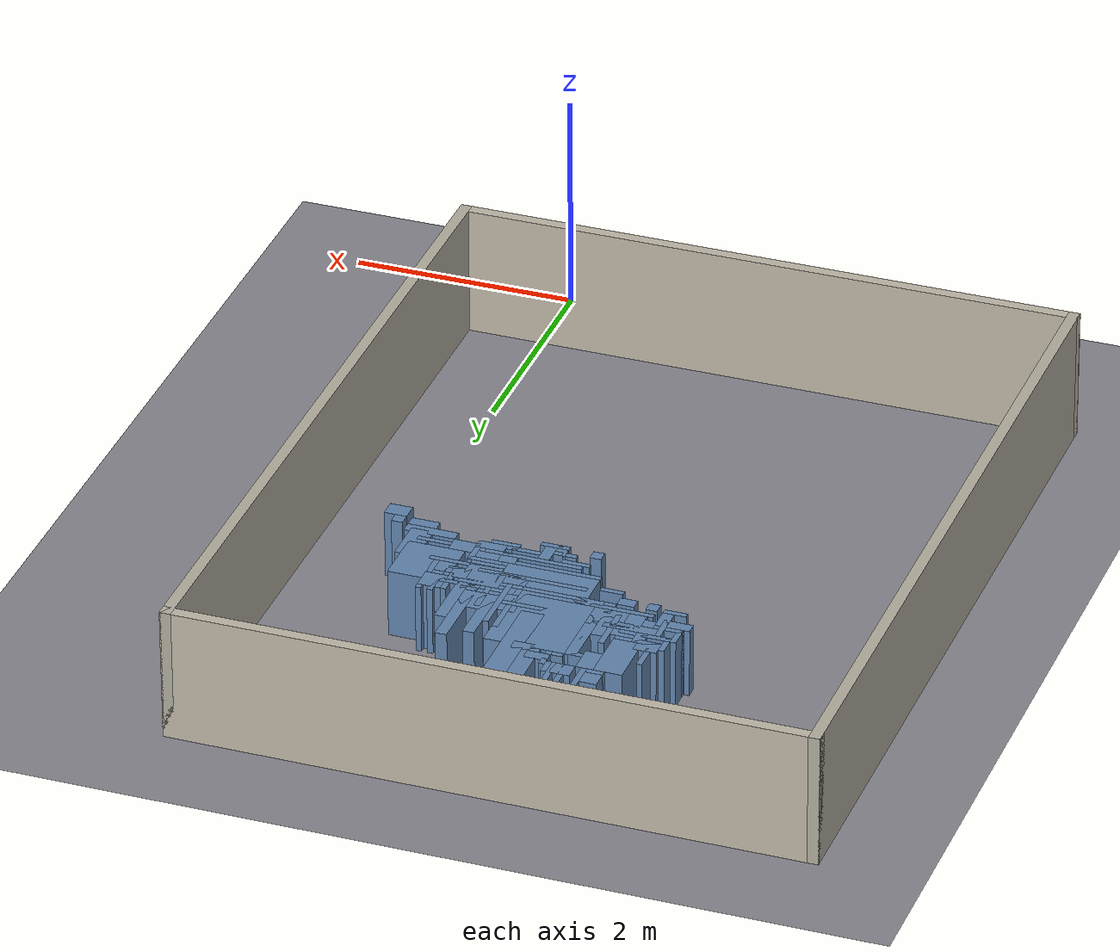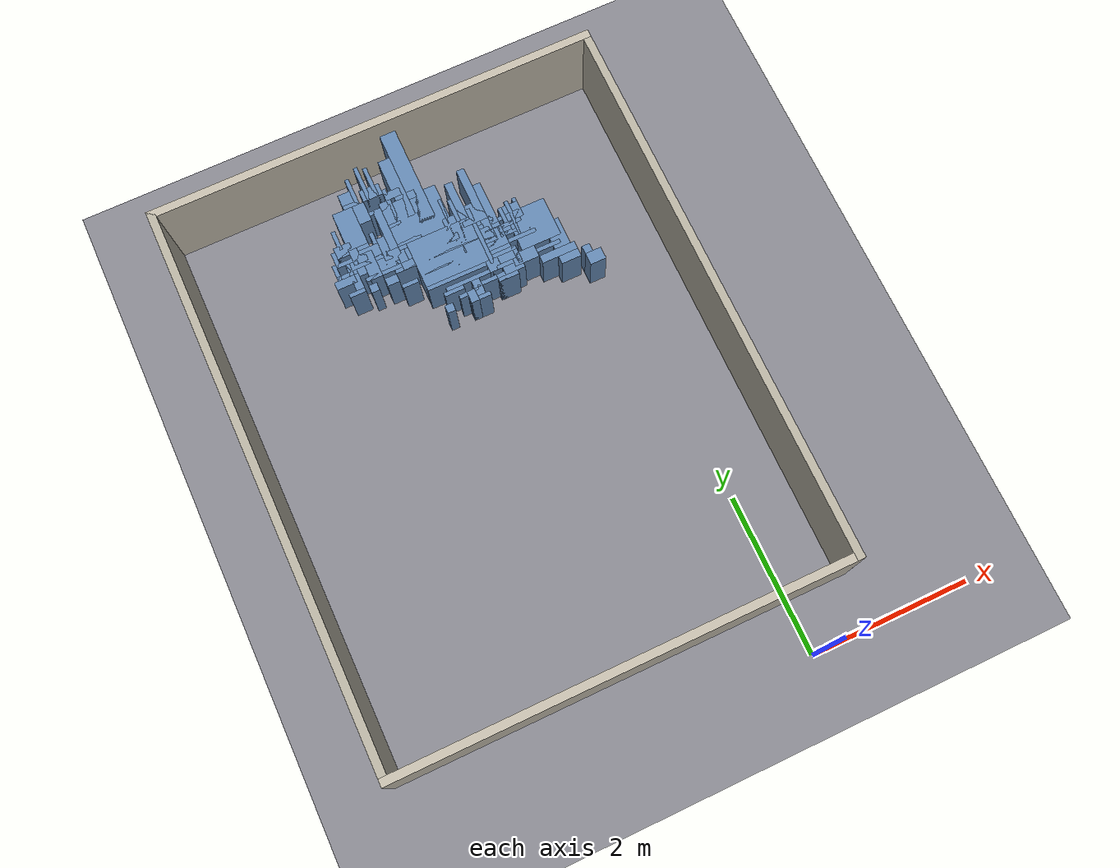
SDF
<?xml version="1.0" ?>
<sdf version="1.8">
  <world name="capture60">
    <physics name="1ms" type="ignored"><max_step_size>0.001</max_step_size><real_time_factor>1.0</real_time_factor></physics>
    <plugin filename="gz-sim-physics-system" name="gz::sim::systems::Physics"/>
    <plugin filename="gz-sim-user-commands-system" name="gz::sim::systems::UserCommands"/>
    <plugin filename="gz-sim-scene-broadcaster-system" name="gz::sim::systems::SceneBroadcaster"/>
    <plugin filename="gz-sim-sensors-system" name="gz::sim::systems::Sensors"><render_engine>ogre2</render_engine></plugin>
    <gravity>0 0 -9.8</gravity>
    <light type="directional" name="sun">
      <cast_shadows>true</cast_shadows>
      <pose>0 0 10 0 0 0</pose>
      <diffuse>0.85 0.85 0.85 1</diffuse>
      <direction>-0.4 0.2 -0.9</direction>
    </light>
    <scene><ambient>0.45 0.45 0.45 1</ambient><background>0.35 0.42 0.52 1</background></scene>
    <model name="ground_plane">
      <static>true</static>
      <link name="link">
        <collision name="collision"><geometry><plane><normal>0 0 1</normal><size>60 60</size></plane></geometry></collision>
        <visual name="visual"><geometry><plane><normal>0 0 1</normal><size>60 60</size></plane></geometry>
          <material><ambient>0.42 0.42 0.44 1</ambient><diffuse>0.52 0.52 0.55 1</diffuse></material></visual>
      </link>
    </model>
  <model name="wall_north">
    <static>true</static>
    <pose>-2.048 7.662 0.600 0 0 0</pose>
    <link name="link">
      <collision name="collision">
        <geometry><box><size>5.650 0.100 1.200</size></box></geometry>
      </collision>
      <visual name="visual">
        <geometry><box><size>5.650 0.100 1.200</size></box></geometry>
        <material><ambient>0.62 0.60 0.55 1</ambient><diffuse>0.75 0.72 0.66 1</diffuse>
          <specular>0.15 0.15 0.15 1</specular></material>
      </visual>
    </link>
  </model>
  <model name="wall_south">
    <static>true</static>
    <pose>-2.048 0.712 0.600 0 0 0</pose>
    <link name="link">
      <collision name="collision">
        <geometry><box><size>5.650 0.100 1.200</size></box></geometry>
      </collision>
      <visual name="visual">
        <geometry><box><size>5.650 0.100 1.200</size></box></geometry>
        <material><ambient>0.62 0.60 0.55 1</ambient><diffuse>0.75 0.72 0.66 1</diffuse>
          <specular>0.15 0.15 0.15 1</specular></material>
      </visual>
    </link>
  </model>
  <model name="wall_west">
    <static>true</static>
    <pose>-4.823 4.187 0.600 0 0 0</pose>
    <link name="link">
      <collision name="collision">
        <geometry><box><size>0.100 7.050 1.200</size></box></geometry>
      </collision>
      <visual name="visual">
        <geometry><box><size>0.100 7.050 1.200</size></box></geometry>
        <material><ambient>0.58 0.56 0.52 1</ambient><diffuse>0.70 0.68 0.62 1</diffuse>
          <specular>0.15 0.15 0.15 1</specular></material>
      </visual>
    </link>
  </model>
  <model name="wall_east">
    <static>true</static>
    <pose>0.727 4.187 0.600 0 0 0</pose>
    <link name="link">
      <collision name="collision">
        <geometry><box><size>0.100 7.050 1.200</size></box></geometry>
      </collision>
      <visual name="visual">
        <geometry><box><size>0.100 7.050 1.200</size></box></geometry>
        <material><ambient>0.58 0.56 0.52 1</ambient><diffuse>0.70 0.68 0.62 1</diffuse>
          <specular>0.15 0.15 0.15 1</specular></material>
      </visual>
    </link>
  </model>
  <model name="obstacle_01">
    <static>true</static>
    <pose>-0.323 5.137 0.590 0 0 0</pose>
    <link name="link">
      <collision name="collision">
        <geometry><box><size>0.200 0.150 0.620</size></box></geometry>
      </collision>
      <visual name="visual">
        <geometry><box><size>0.200 0.150 0.620</size></box></geometry>
        <material><ambient>0.30 0.42 0.55 1</ambient><diffuse>0.38 0.52 0.68 1</diffuse>
          <specular>0.15 0.15 0.15 1</specular></material>
      </visual>
    </link>
  </model>
  <model name="obstacle_02">
    <static>true</static>
    <pose>-0.623 5.562 0.590 0 0 0</pose>
    <link name="link">
      <collision name="collision">
        <geometry><box><size>0.200 0.400 0.620</size></box></geometry>
      </collision>
      <visual name="visual">
        <geometry><box><size>0.200 0.400 0.620</size></box></geometry>
        <material><ambient>0.30 0.42 0.55 1</ambient><diffuse>0.38 0.52 0.68 1</diffuse>
          <specular>0.15 0.15 0.15 1</specular></material>
      </visual>
    </link>
  </model>
  <model name="obstacle_03">
    <static>true</static>
    <pose>-1.823 5.287 0.590 0 0 0</pose>
    <link name="link">
      <collision name="collision">
        <geometry><box><size>0.100 0.150 0.620</size></box></geometry>
      </collision>
      <visual name="visual">
        <geometry><box><size>0.100 0.150 0.620</size></box></geometry>
        <material><ambient>0.30 0.42 0.55 1</ambient><diffuse>0.38 0.52 0.68 1</diffuse>
          <specular>0.15 0.15 0.15 1</specular></material>
      </visual>
    </link>
  </model>
  <model name="obstacle_04">
    <static>true</static>
    <pose>-0.373 5.262 0.590 0 0 0</pose>
    <link name="link">
      <collision name="collision">
        <geometry><box><size>0.100 0.100 0.620</size></box></geometry>
      </collision>
      <visual name="visual">
        <geometry><box><size>0.100 0.100 0.620</size></box></geometry>
        <material><ambient>0.30 0.42 0.55 1</ambient><diffuse>0.38 0.52 0.68 1</diffuse>
          <specular>0.15 0.15 0.15 1</specular></material>
      </visual>
    </link>
  </model>
  <model name="obstacle_05">
    <static>true</static>
    <pose>-2.123 5.262 0.590 0 0 0</pose>
    <link name="link">
      <collision name="collision">
        <geometry><box><size>0.100 0.100 0.620</size></box></geometry>
      </collision>
      <visual name="visual">
        <geometry><box><size>0.100 0.100 0.620</size></box></geometry>
        <material><ambient>0.30 0.42 0.55 1</ambient><diffuse>0.38 0.52 0.68 1</diffuse>
          <specular>0.15 0.15 0.15 1</specular></material>
      </visual>
    </link>
  </model>
  <model name="obstacle_06">
    <static>true</static>
    <pose>-0.598 5.262 0.590 0 0 0</pose>
    <link name="link">
      <collision name="collision">
        <geometry><box><size>0.250 0.100 0.620</size></box></geometry>
      </collision>
      <visual name="visual">
        <geometry><box><size>0.250 0.100 0.620</size></box></geometry>
        <material><ambient>0.30 0.42 0.55 1</ambient><diffuse>0.38 0.52 0.68 1</diffuse>
          <specular>0.15 0.15 0.15 1</specular></material>
      </visual>
    </link>
  </model>
  <model name="obstacle_07">
    <static>true</static>
    <pose>-1.323 6.312 0.590 0 0 0</pose>
    <link name="link">
      <collision name="collision">
        <geometry><box><size>0.100 1.000 0.620</size></box></geometry>
      </collision>
      <visual name="visual">
        <geometry><box><size>0.100 1.000 0.620</size></box></geometry>
        <material><ambient>0.30 0.42 0.55 1</ambient><diffuse>0.38 0.52 0.68 1</diffuse>
          <specular>0.15 0.15 0.15 1</specular></material>
      </visual>
    </link>
  </model>
  <model name="obstacle_08">
    <static>true</static>
    <pose>-1.448 5.937 0.590 0 0 0</pose>
    <link name="link">
      <collision name="collision">
        <geometry><box><size>0.050 0.750 0.620</size></box></geometry>
      </collision>
      <visual name="visual">
        <geometry><box><size>0.050 0.750 0.620</size></box></geometry>
        <material><ambient>0.30 0.42 0.55 1</ambient><diffuse>0.38 0.52 0.68 1</diffuse>
          <specular>0.15 0.15 0.15 1</specular></material>
      </visual>
    </link>
  </model>
  <model name="obstacle_09">
    <static>true</static>
    <pose>-1.748 5.237 0.590 0 0 0</pose>
    <link name="link">
      <collision name="collision">
        <geometry><box><size>0.250 0.050 0.620</size></box></geometry>
      </collision>
      <visual name="visual">
        <geometry><box><size>0.250 0.050 0.620</size></box></geometry>
        <material><ambient>0.30 0.42 0.55 1</ambient><diffuse>0.38 0.52 0.68 1</diffuse>
          <specular>0.15 0.15 0.15 1</specular></material>
      </visual>
    </link>
  </model>
  <model name="obstacle_10">
    <static>true</static>
    <pose>-1.723 5.362 0.590 0 0 0</pose>
    <link name="link">
      <collision name="collision">
        <geometry><box><size>0.100 0.200 0.620</size></box></geometry>
      </collision>
      <visual name="visual">
        <geometry><box><size>0.100 0.200 0.620</size></box></geometry>
        <material><ambient>0.30 0.42 0.55 1</ambient><diffuse>0.38 0.52 0.68 1</diffuse>
          <specular>0.15 0.15 0.15 1</specular></material>
      </visual>
    </link>
  </model>
  <model name="obstacle_11">
    <static>true</static>
    <pose>-0.698 5.362 0.590 0 0 0</pose>
    <link name="link">
      <collision name="collision">
        <geometry><box><size>0.450 0.100 0.620</size></box></geometry>
      </collision>
      <visual name="visual">
        <geometry><box><size>0.450 0.100 0.620</size></box></geometry>
        <material><ambient>0.30 0.42 0.55 1</ambient><diffuse>0.38 0.52 0.68 1</diffuse>
          <specular>0.15 0.15 0.15 1</specular></material>
      </visual>
    </link>
  </model>
  <model name="obstacle_12">
    <static>true</static>
    <pose>-1.423 5.362 0.590 0 0 0</pose>
    <link name="link">
      <collision name="collision">
        <geometry><box><size>0.100 0.100 0.620</size></box></geometry>
      </collision>
      <visual name="visual">
        <geometry><box><size>0.100 0.100 0.620</size></box></geometry>
        <material><ambient>0.30 0.42 0.55 1</ambient><diffuse>0.38 0.52 0.68 1</diffuse>
          <specular>0.15 0.15 0.15 1</specular></material>
      </visual>
    </link>
  </model>
  <model name="obstacle_13">
    <static>true</static>
    <pose>-1.148 5.562 0.590 0 0 0</pose>
    <link name="link">
      <collision name="collision">
        <geometry><box><size>0.050 0.200 0.620</size></box></geometry>
      </collision>
      <visual name="visual">
        <geometry><box><size>0.050 0.200 0.620</size></box></geometry>
        <material><ambient>0.30 0.42 0.55 1</ambient><diffuse>0.38 0.52 0.68 1</diffuse>
          <specular>0.15 0.15 0.15 1</specular></material>
      </visual>
    </link>
  </model>
  <model name="obstacle_14">
    <static>true</static>
    <pose>-1.348 5.337 0.590 0 0 0</pose>
    <link name="link">
      <collision name="collision">
        <geometry><box><size>0.250 0.050 0.620</size></box></geometry>
      </collision>
      <visual name="visual">
        <geometry><box><size>0.250 0.050 0.620</size></box></geometry>
        <material><ambient>0.30 0.42 0.55 1</ambient><diffuse>0.38 0.52 0.68 1</diffuse>
          <specular>0.15 0.15 0.15 1</specular></material>
      </visual>
    </link>
  </model>
  <model name="obstacle_15">
    <static>true</static>
    <pose>-1.248 5.412 0.590 0 0 0</pose>
    <link name="link">
      <collision name="collision">
        <geometry><box><size>0.250 0.100 0.620</size></box></geometry>
      </collision>
      <visual name="visual">
        <geometry><box><size>0.250 0.100 0.620</size></box></geometry>
        <material><ambient>0.30 0.42 0.55 1</ambient><diffuse>0.38 0.52 0.68 1</diffuse>
          <specular>0.15 0.15 0.15 1</specular></material>
      </visual>
    </link>
  </model>
  <model name="obstacle_16">
    <static>true</static>
    <pose>-1.848 5.337 0.590 0 0 0</pose>
    <link name="link">
      <collision name="collision">
        <geometry><box><size>0.250 0.050 0.620</size></box></geometry>
      </collision>
      <visual name="visual">
        <geometry><box><size>0.250 0.050 0.620</size></box></geometry>
        <material><ambient>0.30 0.42 0.55 1</ambient><diffuse>0.38 0.52 0.68 1</diffuse>
          <specular>0.15 0.15 0.15 1</specular></material>
      </visual>
    </link>
  </model>
  <model name="obstacle_17">
    <static>true</static>
    <pose>-1.923 6.962 0.590 0 0 0</pose>
    <link name="link">
      <collision name="collision">
        <geometry><box><size>0.200 1.400 0.620</size></box></geometry>
      </collision>
      <visual name="visual">
        <geometry><box><size>0.200 1.400 0.620</size></box></geometry>
        <material><ambient>0.30 0.42 0.55 1</ambient><diffuse>0.38 0.52 0.68 1</diffuse>
          <specular>0.15 0.15 0.15 1</specular></material>
      </visual>
    </link>
  </model>
  <model name="obstacle_18">
    <static>true</static>
    <pose>-0.998 5.987 0.590 0 0 0</pose>
    <link name="link">
      <collision name="collision">
        <geometry><box><size>0.050 0.450 0.620</size></box></geometry>
      </collision>
      <visual name="visual">
        <geometry><box><size>0.050 0.450 0.620</size></box></geometry>
        <material><ambient>0.30 0.42 0.55 1</ambient><diffuse>0.38 0.52 0.68 1</diffuse>
          <specular>0.15 0.15 0.15 1</specular></material>
      </visual>
    </link>
  </model>
  <model name="obstacle_19">
    <static>true</static>
    <pose>-1.073 5.487 0.590 0 0 0</pose>
    <link name="link">
      <collision name="collision">
        <geometry><box><size>0.300 0.150 0.620</size></box></geometry>
      </collision>
      <visual name="visual">
        <geometry><box><size>0.300 0.150 0.620</size></box></geometry>
        <material><ambient>0.30 0.42 0.55 1</ambient><diffuse>0.38 0.52 0.68 1</diffuse>
          <specular>0.15 0.15 0.15 1</specular></material>
      </visual>
    </link>
  </model>
  <model name="obstacle_20">
    <static>true</static>
    <pose>-1.573 5.387 0.590 0 0 0</pose>
    <link name="link">
      <collision name="collision">
        <geometry><box><size>0.300 0.050 0.620</size></box></geometry>
      </collision>
      <visual name="visual">
        <geometry><box><size>0.300 0.050 0.620</size></box></geometry>
        <material><ambient>0.30 0.42 0.55 1</ambient><diffuse>0.38 0.52 0.68 1</diffuse>
          <specular>0.15 0.15 0.15 1</specular></material>
      </visual>
    </link>
  </model>
  <model name="obstacle_21">
    <static>true</static>
    <pose>-1.448 5.537 0.590 0 0 0</pose>
    <link name="link">
      <collision name="collision">
        <geometry><box><size>0.150 0.150 0.620</size></box></geometry>
      </collision>
      <visual name="visual">
        <geometry><box><size>0.150 0.150 0.620</size></box></geometry>
        <material><ambient>0.30 0.42 0.55 1</ambient><diffuse>0.38 0.52 0.68 1</diffuse>
          <specular>0.15 0.15 0.15 1</specular></material>
      </visual>
    </link>
  </model>
  <model name="obstacle_22">
    <static>true</static>
    <pose>-1.598 6.212 0.590 0 0 0</pose>
    <link name="link">
      <collision name="collision">
        <geometry><box><size>0.050 0.600 0.620</size></box></geometry>
      </collision>
      <visual name="visual">
        <geometry><box><size>0.050 0.600 0.620</size></box></geometry>
        <material><ambient>0.30 0.42 0.55 1</ambient><diffuse>0.38 0.52 0.68 1</diffuse>
          <specular>0.15 0.15 0.15 1</specular></material>
      </visual>
    </link>
  </model>
  <model name="obstacle_23">
    <static>true</static>
    <pose>-1.698 6.187 0.590 0 0 0</pose>
    <link name="link">
      <collision name="collision">
        <geometry><box><size>0.050 0.750 0.620</size></box></geometry>
      </collision>
      <visual name="visual">
        <geometry><box><size>0.050 0.750 0.620</size></box></geometry>
        <material><ambient>0.30 0.42 0.55 1</ambient><diffuse>0.38 0.52 0.68 1</diffuse>
          <specular>0.15 0.15 0.15 1</specular></material>
      </visual>
    </link>
  </model>
  <model name="obstacle_24">
    <static>true</static>
    <pose>-1.998 5.437 0.590 0 0 0</pose>
    <link name="link">
      <collision name="collision">
        <geometry><box><size>0.250 0.050 0.620</size></box></geometry>
      </collision>
      <visual name="visual">
        <geometry><box><size>0.250 0.050 0.620</size></box></geometry>
        <material><ambient>0.30 0.42 0.55 1</ambient><diffuse>0.38 0.52 0.68 1</diffuse>
          <specular>0.15 0.15 0.15 1</specular></material>
      </visual>
    </link>
  </model>
  <model name="obstacle_25">
    <static>true</static>
    <pose>-0.773 5.487 0.590 0 0 0</pose>
    <link name="link">
      <collision name="collision">
        <geometry><box><size>0.300 0.050 0.620</size></box></geometry>
      </collision>
      <visual name="visual">
        <geometry><box><size>0.300 0.050 0.620</size></box></geometry>
        <material><ambient>0.30 0.42 0.55 1</ambient><diffuse>0.38 0.52 0.68 1</diffuse>
          <specular>0.15 0.15 0.15 1</specular></material>
      </visual>
    </link>
  </model>
  <model name="obstacle_26">
    <static>true</static>
    <pose>-0.823 5.812 0.590 0 0 0</pose>
    <link name="link">
      <collision name="collision">
        <geometry><box><size>0.500 0.500 0.620</size></box></geometry>
      </collision>
      <visual name="visual">
        <geometry><box><size>0.500 0.500 0.620</size></box></geometry>
        <material><ambient>0.30 0.42 0.55 1</ambient><diffuse>0.38 0.52 0.68 1</diffuse>
          <specular>0.15 0.15 0.15 1</specular></material>
      </visual>
    </link>
  </model>
  <model name="obstacle_27">
    <static>true</static>
    <pose>-0.898 5.987 0.590 0 0 0</pose>
    <link name="link">
      <collision name="collision">
        <geometry><box><size>0.050 0.450 0.620</size></box></geometry>
      </collision>
      <visual name="visual">
        <geometry><box><size>0.050 0.450 0.620</size></box></geometry>
        <material><ambient>0.30 0.42 0.55 1</ambient><diffuse>0.38 0.52 0.68 1</diffuse>
          <specular>0.15 0.15 0.15 1</specular></material>
      </visual>
    </link>
  </model>
  <model name="obstacle_28">
    <static>true</static>
    <pose>-1.648 5.487 0.590 0 0 0</pose>
    <link name="link">
      <collision name="collision">
        <geometry><box><size>0.850 0.050 0.620</size></box></geometry>
      </collision>
      <visual name="visual">
        <geometry><box><size>0.850 0.050 0.620</size></box></geometry>
        <material><ambient>0.30 0.42 0.55 1</ambient><diffuse>0.38 0.52 0.68 1</diffuse>
          <specular>0.15 0.15 0.15 1</specular></material>
      </visual>
    </link>
  </model>
  <model name="obstacle_29">
    <static>true</static>
    <pose>-1.273 5.562 0.590 0 0 0</pose>
    <link name="link">
      <collision name="collision">
        <geometry><box><size>0.200 0.100 0.620</size></box></geometry>
      </collision>
      <visual name="visual">
        <geometry><box><size>0.200 0.100 0.620</size></box></geometry>
        <material><ambient>0.30 0.42 0.55 1</ambient><diffuse>0.38 0.52 0.68 1</diffuse>
          <specular>0.15 0.15 0.15 1</specular></material>
      </visual>
    </link>
  </model>
  <model name="obstacle_30">
    <static>true</static>
    <pose>-1.773 5.587 0.590 0 0 0</pose>
    <link name="link">
      <collision name="collision">
        <geometry><box><size>1.000 0.050 0.620</size></box></geometry>
      </collision>
      <visual name="visual">
        <geometry><box><size>1.000 0.050 0.620</size></box></geometry>
        <material><ambient>0.30 0.42 0.55 1</ambient><diffuse>0.38 0.52 0.68 1</diffuse>
          <specular>0.15 0.15 0.15 1</specular></material>
      </visual>
    </link>
  </model>
  <model name="obstacle_31">
    <static>true</static>
    <pose>-1.348 5.862 0.590 0 0 0</pose>
    <link name="link">
      <collision name="collision">
        <geometry><box><size>0.350 0.300 0.620</size></box></geometry>
      </collision>
      <visual name="visual">
        <geometry><box><size>0.350 0.300 0.620</size></box></geometry>
        <material><ambient>0.30 0.42 0.55 1</ambient><diffuse>0.38 0.52 0.68 1</diffuse>
          <specular>0.15 0.15 0.15 1</specular></material>
      </visual>
    </link>
  </model>
  <model name="obstacle_32">
    <static>true</static>
    <pose>-1.873 5.912 0.590 0 0 0</pose>
    <link name="link">
      <collision name="collision">
        <geometry><box><size>0.800 0.600 0.620</size></box></geometry>
      </collision>
      <visual name="visual">
        <geometry><box><size>0.800 0.600 0.620</size></box></geometry>
        <material><ambient>0.30 0.42 0.55 1</ambient><diffuse>0.38 0.52 0.68 1</diffuse>
          <specular>0.15 0.15 0.15 1</specular></material>
      </visual>
    </link>
  </model>
  <model name="obstacle_33">
    <static>true</static>
    <pose>-1.273 5.637 0.590 0 0 0</pose>
    <link name="link">
      <collision name="collision">
        <geometry><box><size>0.300 0.050 0.620</size></box></geometry>
      </collision>
      <visual name="visual">
        <geometry><box><size>0.300 0.050 0.620</size></box></geometry>
        <material><ambient>0.30 0.42 0.55 1</ambient><diffuse>0.38 0.52 0.68 1</diffuse>
          <specular>0.15 0.15 0.15 1</specular></material>
      </visual>
    </link>
  </model>
  <model name="obstacle_34">
    <static>true</static>
    <pose>-1.498 5.687 0.590 0 0 0</pose>
    <link name="link">
      <collision name="collision">
        <geometry><box><size>0.650 0.050 0.620</size></box></geometry>
      </collision>
      <visual name="visual">
        <geometry><box><size>0.650 0.050 0.620</size></box></geometry>
        <material><ambient>0.30 0.42 0.55 1</ambient><diffuse>0.38 0.52 0.68 1</diffuse>
          <specular>0.15 0.15 0.15 1</specular></material>
      </visual>
    </link>
  </model>
  <model name="obstacle_35">
    <static>true</static>
    <pose>-1.173 5.737 0.590 0 0 0</pose>
    <link name="link">
      <collision name="collision">
        <geometry><box><size>0.700 0.050 0.620</size></box></geometry>
      </collision>
      <visual name="visual">
        <geometry><box><size>0.700 0.050 0.620</size></box></geometry>
        <material><ambient>0.30 0.42 0.55 1</ambient><diffuse>0.38 0.52 0.68 1</diffuse>
          <specular>0.15 0.15 0.15 1</specular></material>
      </visual>
    </link>
  </model>
  <model name="obstacle_36">
    <static>true</static>
    <pose>-1.148 5.887 0.590 0 0 0</pose>
    <link name="link">
      <collision name="collision">
        <geometry><box><size>0.150 0.150 0.620</size></box></geometry>
      </collision>
      <visual name="visual">
        <geometry><box><size>0.150 0.150 0.620</size></box></geometry>
        <material><ambient>0.30 0.42 0.55 1</ambient><diffuse>0.38 0.52 0.68 1</diffuse>
          <specular>0.15 0.15 0.15 1</specular></material>
      </visual>
    </link>
  </model>
  <model name="obstacle_37">
    <static>true</static>
    <pose>-1.098 6.037 0.590 0 0 0</pose>
    <link name="link">
      <collision name="collision">
        <geometry><box><size>0.050 0.250 0.620</size></box></geometry>
      </collision>
      <visual name="visual">
        <geometry><box><size>0.050 0.250 0.620</size></box></geometry>
        <material><ambient>0.30 0.42 0.55 1</ambient><diffuse>0.38 0.52 0.68 1</diffuse>
          <specular>0.15 0.15 0.15 1</specular></material>
      </visual>
    </link>
  </model>
  <model name="obstacle_38">
    <static>true</static>
    <pose>-2.023 6.387 0.590 0 0 0</pose>
    <link name="link">
      <collision name="collision">
        <geometry><box><size>0.700 0.750 0.620</size></box></geometry>
      </collision>
      <visual name="visual">
        <geometry><box><size>0.700 0.750 0.620</size></box></geometry>
        <material><ambient>0.30 0.42 0.55 1</ambient><diffuse>0.38 0.52 0.68 1</diffuse>
          <specular>0.15 0.15 0.15 1</specular></material>
      </visual>
    </link>
  </model>
  <model name="obstacle_39">
    <static>true</static>
    <pose>-2.423 5.737 0.590 0 0 0</pose>
    <link name="link">
      <collision name="collision">
        <geometry><box><size>0.200 0.050 0.620</size></box></geometry>
      </collision>
      <visual name="visual">
        <geometry><box><size>0.200 0.050 0.620</size></box></geometry>
        <material><ambient>0.30 0.42 0.55 1</ambient><diffuse>0.38 0.52 0.68 1</diffuse>
          <specular>0.15 0.15 0.15 1</specular></material>
      </visual>
    </link>
  </model>
  <model name="obstacle_40">
    <static>true</static>
    <pose>-1.748 5.787 0.590 0 0 0</pose>
    <link name="link">
      <collision name="collision">
        <geometry><box><size>0.950 0.050 0.620</size></box></geometry>
      </collision>
      <visual name="visual">
        <geometry><box><size>0.950 0.050 0.620</size></box></geometry>
        <material><ambient>0.30 0.42 0.55 1</ambient><diffuse>0.38 0.52 0.68 1</diffuse>
          <specular>0.15 0.15 0.15 1</specular></material>
      </visual>
    </link>
  </model>
  <model name="obstacle_41">
    <static>true</static>
    <pose>-2.098 6.912 0.590 0 0 0</pose>
    <link name="link">
      <collision name="collision">
        <geometry><box><size>0.150 0.800 0.620</size></box></geometry>
      </collision>
      <visual name="visual">
        <geometry><box><size>0.150 0.800 0.620</size></box></geometry>
        <material><ambient>0.30 0.42 0.55 1</ambient><diffuse>0.38 0.52 0.68 1</diffuse>
          <specular>0.15 0.15 0.15 1</specular></material>
      </visual>
    </link>
  </model>
  <model name="obstacle_42">
    <static>true</static>
    <pose>-2.598 5.862 0.590 0 0 0</pose>
    <link name="link">
      <collision name="collision">
        <geometry><box><size>0.150 0.100 0.620</size></box></geometry>
      </collision>
      <visual name="visual">
        <geometry><box><size>0.150 0.100 0.620</size></box></geometry>
        <material><ambient>0.30 0.42 0.55 1</ambient><diffuse>0.38 0.52 0.68 1</diffuse>
          <specular>0.15 0.15 0.15 1</specular></material>
      </visual>
    </link>
  </model>
  <model name="obstacle_43">
    <static>true</static>
    <pose>-2.823 5.862 0.590 0 0 0</pose>
    <link name="link">
      <collision name="collision">
        <geometry><box><size>0.100 0.100 0.620</size></box></geometry>
      </collision>
      <visual name="visual">
        <geometry><box><size>0.100 0.100 0.620</size></box></geometry>
        <material><ambient>0.30 0.42 0.55 1</ambient><diffuse>0.38 0.52 0.68 1</diffuse>
          <specular>0.15 0.15 0.15 1</specular></material>
      </visual>
    </link>
  </model>
  <model name="obstacle_44">
    <static>true</static>
    <pose>-1.198 5.837 0.590 0 0 0</pose>
    <link name="link">
      <collision name="collision">
        <geometry><box><size>0.350 0.050 0.620</size></box></geometry>
      </collision>
      <visual name="visual">
        <geometry><box><size>0.350 0.050 0.620</size></box></geometry>
        <material><ambient>0.30 0.42 0.55 1</ambient><diffuse>0.38 0.52 0.68 1</diffuse>
          <specular>0.15 0.15 0.15 1</specular></material>
      </visual>
    </link>
  </model>
  <model name="obstacle_45">
    <static>true</static>
    <pose>-1.223 6.287 0.590 0 0 0</pose>
    <link name="link">
      <collision name="collision">
        <geometry><box><size>0.100 0.550 0.620</size></box></geometry>
      </collision>
      <visual name="visual">
        <geometry><box><size>0.100 0.550 0.620</size></box></geometry>
        <material><ambient>0.30 0.42 0.55 1</ambient><diffuse>0.38 0.52 0.68 1</diffuse>
          <specular>0.15 0.15 0.15 1</specular></material>
      </visual>
    </link>
  </model>
  <model name="obstacle_46">
    <static>true</static>
    <pose>-2.248 6.662 0.590 0 0 0</pose>
    <link name="link">
      <collision name="collision">
        <geometry><box><size>0.050 0.600 0.620</size></box></geometry>
      </collision>
      <visual name="visual">
        <geometry><box><size>0.050 0.600 0.620</size></box></geometry>
        <material><ambient>0.30 0.42 0.55 1</ambient><diffuse>0.38 0.52 0.68 1</diffuse>
          <specular>0.15 0.15 0.15 1</specular></material>
      </visual>
    </link>
  </model>
  <model name="obstacle_47">
    <static>true</static>
    <pose>-2.373 6.137 0.590 0 0 0</pose>
    <link name="link">
      <collision name="collision">
        <geometry><box><size>0.100 0.250 0.620</size></box></geometry>
      </collision>
      <visual name="visual">
        <geometry><box><size>0.100 0.250 0.620</size></box></geometry>
        <material><ambient>0.30 0.42 0.55 1</ambient><diffuse>0.38 0.52 0.68 1</diffuse>
          <specular>0.15 0.15 0.15 1</specular></material>
      </visual>
    </link>
  </model>
  <model name="obstacle_48">
    <static>true</static>
    <pose>-2.598 6.287 0.590 0 0 0</pose>
    <link name="link">
      <collision name="collision">
        <geometry><box><size>0.050 0.450 0.620</size></box></geometry>
      </collision>
      <visual name="visual">
        <geometry><box><size>0.050 0.450 0.620</size></box></geometry>
        <material><ambient>0.30 0.42 0.55 1</ambient><diffuse>0.38 0.52 0.68 1</diffuse>
          <specular>0.15 0.15 0.15 1</specular></material>
      </visual>
    </link>
  </model>
  <model name="obstacle_49">
    <static>true</static>
    <pose>-2.973 6.012 0.590 0 0 0</pose>
    <link name="link">
      <collision name="collision">
        <geometry><box><size>0.100 0.200 0.620</size></box></geometry>
      </collision>
      <visual name="visual">
        <geometry><box><size>0.100 0.200 0.620</size></box></geometry>
        <material><ambient>0.30 0.42 0.55 1</ambient><diffuse>0.38 0.52 0.68 1</diffuse>
          <specular>0.15 0.15 0.15 1</specular></material>
      </visual>
    </link>
  </model>
  <model name="obstacle_50">
    <static>true</static>
    <pose>-0.973 6.062 0.590 0 0 0</pose>
    <link name="link">
      <collision name="collision">
        <geometry><box><size>0.200 0.200 0.620</size></box></geometry>
      </collision>
      <visual name="visual">
        <geometry><box><size>0.200 0.200 0.620</size></box></geometry>
        <material><ambient>0.30 0.42 0.55 1</ambient><diffuse>0.38 0.52 0.68 1</diffuse>
          <specular>0.15 0.15 0.15 1</specular></material>
      </visual>
    </link>
  </model>
  <model name="obstacle_51">
    <static>true</static>
    <pose>-1.498 5.887 0.590 0 0 0</pose>
    <link name="link">
      <collision name="collision">
        <geometry><box><size>0.350 0.050 0.620</size></box></geometry>
      </collision>
      <visual name="visual">
        <geometry><box><size>0.350 0.050 0.620</size></box></geometry>
        <material><ambient>0.30 0.42 0.55 1</ambient><diffuse>0.38 0.52 0.68 1</diffuse>
          <specular>0.15 0.15 0.15 1</specular></material>
      </visual>
    </link>
  </model>
  <model name="obstacle_52">
    <static>true</static>
    <pose>-2.298 5.962 0.590 0 0 0</pose>
    <link name="link">
      <collision name="collision">
        <geometry><box><size>0.250 0.100 0.620</size></box></geometry>
      </collision>
      <visual name="visual">
        <geometry><box><size>0.250 0.100 0.620</size></box></geometry>
        <material><ambient>0.30 0.42 0.55 1</ambient><diffuse>0.38 0.52 0.68 1</diffuse>
          <specular>0.15 0.15 0.15 1</specular></material>
      </visual>
    </link>
  </model>
  <model name="obstacle_53">
    <static>true</static>
    <pose>-2.748 6.137 0.590 0 0 0</pose>
    <link name="link">
      <collision name="collision">
        <geometry><box><size>0.150 0.350 0.620</size></box></geometry>
      </collision>
      <visual name="visual">
        <geometry><box><size>0.150 0.350 0.620</size></box></geometry>
        <material><ambient>0.30 0.42 0.55 1</ambient><diffuse>0.38 0.52 0.68 1</diffuse>
          <specular>0.15 0.15 0.15 1</specular></material>
      </visual>
    </link>
  </model>
  <model name="obstacle_54">
    <static>true</static>
    <pose>-3.023 5.887 0.590 0 0 0</pose>
    <link name="link">
      <collision name="collision">
        <geometry><box><size>0.200 0.050 0.620</size></box></geometry>
      </collision>
      <visual name="visual">
        <geometry><box><size>0.200 0.050 0.620</size></box></geometry>
        <material><ambient>0.30 0.42 0.55 1</ambient><diffuse>0.38 0.52 0.68 1</diffuse>
          <specular>0.15 0.15 0.15 1</specular></material>
      </visual>
    </link>
  </model>
  <model name="obstacle_55">
    <static>true</static>
    <pose>-2.998 6.137 0.590 0 0 0</pose>
    <link name="link">
      <collision name="collision">
        <geometry><box><size>0.050 0.250 0.620</size></box></geometry>
      </collision>
      <visual name="visual">
        <geometry><box><size>0.050 0.250 0.620</size></box></geometry>
        <material><ambient>0.30 0.42 0.55 1</ambient><diffuse>0.38 0.52 0.68 1</diffuse>
          <specular>0.15 0.15 0.15 1</specular></material>
      </visual>
    </link>
  </model>
  <model name="obstacle_56">
    <static>true</static>
    <pose>-1.148 5.937 0.590 0 0 0</pose>
    <link name="link">
      <collision name="collision">
        <geometry><box><size>0.450 0.050 0.620</size></box></geometry>
      </collision>
      <visual name="visual">
        <geometry><box><size>0.450 0.050 0.620</size></box></geometry>
        <material><ambient>0.30 0.42 0.55 1</ambient><diffuse>0.38 0.52 0.68 1</diffuse>
          <specular>0.15 0.15 0.15 1</specular></material>
      </visual>
    </link>
  </model>
  <model name="obstacle_57">
    <static>true</static>
    <pose>-1.998 5.937 0.590 0 0 0</pose>
    <link name="link">
      <collision name="collision">
        <geometry><box><size>1.050 0.050 0.620</size></box></geometry>
      </collision>
      <visual name="visual">
        <geometry><box><size>1.050 0.050 0.620</size></box></geometry>
        <material><ambient>0.30 0.42 0.55 1</ambient><diffuse>0.38 0.52 0.68 1</diffuse>
          <specular>0.15 0.15 0.15 1</specular></material>
      </visual>
    </link>
  </model>
  <model name="obstacle_58">
    <static>true</static>
    <pose>-2.423 6.012 0.590 0 0 0</pose>
    <link name="link">
      <collision name="collision">
        <geometry><box><size>0.200 0.100 0.620</size></box></geometry>
      </collision>
      <visual name="visual">
        <geometry><box><size>0.200 0.100 0.620</size></box></geometry>
        <material><ambient>0.30 0.42 0.55 1</ambient><diffuse>0.38 0.52 0.68 1</diffuse>
          <specular>0.15 0.15 0.15 1</specular></material>
      </visual>
    </link>
  </model>
  <model name="obstacle_59">
    <static>true</static>
    <pose>-2.523 6.262 0.590 0 0 0</pose>
    <link name="link">
      <collision name="collision">
        <geometry><box><size>0.100 0.300 0.620</size></box></geometry>
      </collision>
      <visual name="visual">
        <geometry><box><size>0.100 0.300 0.620</size></box></geometry>
        <material><ambient>0.30 0.42 0.55 1</ambient><diffuse>0.38 0.52 0.68 1</diffuse>
          <specular>0.15 0.15 0.15 1</specular></material>
      </visual>
    </link>
  </model>
  <model name="obstacle_60">
    <static>true</static>
    <pose>-1.448 5.987 0.590 0 0 0</pose>
    <link name="link">
      <collision name="collision">
        <geometry><box><size>0.250 0.050 0.620</size></box></geometry>
      </collision>
      <visual name="visual">
        <geometry><box><size>0.250 0.050 0.620</size></box></geometry>
        <material><ambient>0.30 0.42 0.55 1</ambient><diffuse>0.38 0.52 0.68 1</diffuse>
          <specular>0.15 0.15 0.15 1</specular></material>
      </visual>
    </link>
  </model>
  <model name="obstacle_61">
    <static>true</static>
    <pose>-1.423 6.237 0.590 0 0 0</pose>
    <link name="link">
      <collision name="collision">
        <geometry><box><size>0.300 0.250 0.620</size></box></geometry>
      </collision>
      <visual name="visual">
        <geometry><box><size>0.300 0.250 0.620</size></box></geometry>
        <material><ambient>0.30 0.42 0.55 1</ambient><diffuse>0.38 0.52 0.68 1</diffuse>
          <specular>0.15 0.15 0.15 1</specular></material>
      </visual>
    </link>
  </model>
  <model name="obstacle_62">
    <static>true</static>
    <pose>-2.598 5.987 0.590 0 0 0</pose>
    <link name="link">
      <collision name="collision">
        <geometry><box><size>0.550 0.050 0.620</size></box></geometry>
      </collision>
      <visual name="visual">
        <geometry><box><size>0.550 0.050 0.620</size></box></geometry>
        <material><ambient>0.30 0.42 0.55 1</ambient><diffuse>0.38 0.52 0.68 1</diffuse>
          <specular>0.15 0.15 0.15 1</specular></material>
      </visual>
    </link>
  </model>
  <model name="obstacle_63">
    <static>true</static>
    <pose>-2.798 6.662 0.590 0 0 0</pose>
    <link name="link">
      <collision name="collision">
        <geometry><box><size>0.250 0.500 0.620</size></box></geometry>
      </collision>
      <visual name="visual">
        <geometry><box><size>0.250 0.500 0.620</size></box></geometry>
        <material><ambient>0.30 0.42 0.55 1</ambient><diffuse>0.38 0.52 0.68 1</diffuse>
          <specular>0.15 0.15 0.15 1</specular></material>
      </visual>
    </link>
  </model>
  <model name="obstacle_64">
    <static>true</static>
    <pose>-3.098 6.062 0.590 0 0 0</pose>
    <link name="link">
      <collision name="collision">
        <geometry><box><size>0.250 0.100 0.620</size></box></geometry>
      </collision>
      <visual name="visual">
        <geometry><box><size>0.250 0.100 0.620</size></box></geometry>
        <material><ambient>0.30 0.42 0.55 1</ambient><diffuse>0.38 0.52 0.68 1</diffuse>
          <specular>0.15 0.15 0.15 1</specular></material>
      </visual>
    </link>
  </model>
  <model name="obstacle_65">
    <static>true</static>
    <pose>-3.148 6.212 0.590 0 0 0</pose>
    <link name="link">
      <collision name="collision">
        <geometry><box><size>0.050 0.200 0.620</size></box></geometry>
      </collision>
      <visual name="visual">
        <geometry><box><size>0.050 0.200 0.620</size></box></geometry>
        <material><ambient>0.30 0.42 0.55 1</ambient><diffuse>0.38 0.52 0.68 1</diffuse>
          <specular>0.15 0.15 0.15 1</specular></material>
      </visual>
    </link>
  </model>
  <model name="obstacle_66">
    <static>true</static>
    <pose>-1.248 6.037 0.590 0 0 0</pose>
    <link name="link">
      <collision name="collision">
        <geometry><box><size>0.450 0.050 0.620</size></box></geometry>
      </collision>
      <visual name="visual">
        <geometry><box><size>0.450 0.050 0.620</size></box></geometry>
        <material><ambient>0.30 0.42 0.55 1</ambient><diffuse>0.38 0.52 0.68 1</diffuse>
          <specular>0.15 0.15 0.15 1</specular></material>
      </visual>
    </link>
  </model>
  <model name="obstacle_67">
    <static>true</static>
    <pose>-1.473 6.112 0.590 0 0 0</pose>
    <link name="link">
      <collision name="collision">
        <geometry><box><size>0.500 0.100 0.620</size></box></geometry>
      </collision>
      <visual name="visual">
        <geometry><box><size>0.500 0.100 0.620</size></box></geometry>
        <material><ambient>0.30 0.42 0.55 1</ambient><diffuse>0.38 0.52 0.68 1</diffuse>
          <specular>0.15 0.15 0.15 1</specular></material>
      </visual>
    </link>
  </model>
  <model name="obstacle_68">
    <static>true</static>
    <pose>-2.873 6.112 0.590 0 0 0</pose>
    <link name="link">
      <collision name="collision">
        <geometry><box><size>0.100 0.100 0.620</size></box></geometry>
      </collision>
      <visual name="visual">
        <geometry><box><size>0.100 0.100 0.620</size></box></geometry>
        <material><ambient>0.30 0.42 0.55 1</ambient><diffuse>0.38 0.52 0.68 1</diffuse>
          <specular>0.15 0.15 0.15 1</specular></material>
      </visual>
    </link>
  </model>
  <model name="obstacle_69">
    <static>true</static>
    <pose>-1.523 6.462 0.590 0 0 0</pose>
    <link name="link">
      <collision name="collision">
        <geometry><box><size>0.100 0.500 0.620</size></box></geometry>
      </collision>
      <visual name="visual">
        <geometry><box><size>0.100 0.500 0.620</size></box></geometry>
        <material><ambient>0.30 0.42 0.55 1</ambient><diffuse>0.38 0.52 0.68 1</diffuse>
          <specular>0.15 0.15 0.15 1</specular></material>
      </visual>
    </link>
  </model>
  <model name="obstacle_70">
    <static>true</static>
    <pose>-1.698 6.237 0.590 0 0 0</pose>
    <link name="link">
      <collision name="collision">
        <geometry><box><size>0.150 0.150 0.620</size></box></geometry>
      </collision>
      <visual name="visual">
        <geometry><box><size>0.150 0.150 0.620</size></box></geometry>
        <material><ambient>0.30 0.42 0.55 1</ambient><diffuse>0.38 0.52 0.68 1</diffuse>
          <specular>0.15 0.15 0.15 1</specular></material>
      </visual>
    </link>
  </model>
  <model name="obstacle_71">
    <static>true</static>
    <pose>-2.573 6.112 0.590 0 0 0</pose>
    <link name="link">
      <collision name="collision">
        <geometry><box><size>0.400 0.200 0.620</size></box></geometry>
      </collision>
      <visual name="visual">
        <geometry><box><size>0.400 0.200 0.620</size></box></geometry>
        <material><ambient>0.30 0.42 0.55 1</ambient><diffuse>0.38 0.52 0.68 1</diffuse>
          <specular>0.15 0.15 0.15 1</specular></material>
      </visual>
    </link>
  </model>
  <model name="obstacle_72">
    <static>true</static>
    <pose>-2.423 6.487 0.590 0 0 0</pose>
    <link name="link">
      <collision name="collision">
        <geometry><box><size>0.100 0.550 0.620</size></box></geometry>
      </collision>
      <visual name="visual">
        <geometry><box><size>0.100 0.550 0.620</size></box></geometry>
        <material><ambient>0.30 0.42 0.55 1</ambient><diffuse>0.38 0.52 0.68 1</diffuse>
          <specular>0.15 0.15 0.15 1</specular></material>
      </visual>
    </link>
  </model>
  <model name="obstacle_73">
    <static>true</static>
    <pose>-2.873 6.312 0.590 0 0 0</pose>
    <link name="link">
      <collision name="collision">
        <geometry><box><size>0.100 0.200 0.620</size></box></geometry>
      </collision>
      <visual name="visual">
        <geometry><box><size>0.100 0.200 0.620</size></box></geometry>
        <material><ambient>0.30 0.42 0.55 1</ambient><diffuse>0.38 0.52 0.68 1</diffuse>
          <specular>0.15 0.15 0.15 1</specular></material>
      </visual>
    </link>
  </model>
  <model name="obstacle_74">
    <static>true</static>
    <pose>-2.723 6.287 0.590 0 0 0</pose>
    <link name="link">
      <collision name="collision">
        <geometry><box><size>0.300 0.150 0.620</size></box></geometry>
      </collision>
      <visual name="visual">
        <geometry><box><size>0.300 0.150 0.620</size></box></geometry>
        <material><ambient>0.30 0.42 0.55 1</ambient><diffuse>0.38 0.52 0.68 1</diffuse>
          <specular>0.15 0.15 0.15 1</specular></material>
      </visual>
    </link>
  </model>
  <model name="obstacle_75">
    <static>true</static>
    <pose>-3.048 6.137 0.590 0 0 0</pose>
    <link name="link">
      <collision name="collision">
        <geometry><box><size>0.250 0.050 0.620</size></box></geometry>
      </collision>
      <visual name="visual">
        <geometry><box><size>0.250 0.050 0.620</size></box></geometry>
        <material><ambient>0.30 0.42 0.55 1</ambient><diffuse>0.38 0.52 0.68 1</diffuse>
          <specular>0.15 0.15 0.15 1</specular></material>
      </visual>
    </link>
  </model>
  <model name="obstacle_76">
    <static>true</static>
    <pose>-2.773 6.212 0.590 0 0 0</pose>
    <link name="link">
      <collision name="collision">
        <geometry><box><size>0.500 0.100 0.620</size></box></geometry>
      </collision>
      <visual name="visual">
        <geometry><box><size>0.500 0.100 0.620</size></box></geometry>
        <material><ambient>0.30 0.42 0.55 1</ambient><diffuse>0.38 0.52 0.68 1</diffuse>
          <specular>0.15 0.15 0.15 1</specular></material>
      </visual>
    </link>
  </model>
  <model name="obstacle_77">
    <static>true</static>
    <pose>-3.098 6.362 0.590 0 0 0</pose>
    <link name="link">
      <collision name="collision">
        <geometry><box><size>0.050 0.200 0.620</size></box></geometry>
      </collision>
      <visual name="visual">
        <geometry><box><size>0.050 0.200 0.620</size></box></geometry>
        <material><ambient>0.30 0.42 0.55 1</ambient><diffuse>0.38 0.52 0.68 1</diffuse>
          <specular>0.15 0.15 0.15 1</specular></material>
      </visual>
    </link>
  </model>
  <model name="obstacle_78">
    <static>true</static>
    <pose>-2.048 6.187 0.590 0 0 0</pose>
    <link name="link">
      <collision name="collision">
        <geometry><box><size>0.850 0.050 0.620</size></box></geometry>
      </collision>
      <visual name="visual">
        <geometry><box><size>0.850 0.050 0.620</size></box></geometry>
        <material><ambient>0.30 0.42 0.55 1</ambient><diffuse>0.38 0.52 0.68 1</diffuse>
          <specular>0.15 0.15 0.15 1</specular></material>
      </visual>
    </link>
  </model>
  <model name="obstacle_79">
    <static>true</static>
    <pose>-2.348 6.262 0.590 0 0 0</pose>
    <link name="link">
      <collision name="collision">
        <geometry><box><size>0.550 0.100 0.620</size></box></geometry>
      </collision>
      <visual name="visual">
        <geometry><box><size>0.550 0.100 0.620</size></box></geometry>
        <material><ambient>0.30 0.42 0.55 1</ambient><diffuse>0.38 0.52 0.68 1</diffuse>
          <specular>0.15 0.15 0.15 1</specular></material>
      </visual>
    </link>
  </model>
  <model name="obstacle_80">
    <static>true</static>
    <pose>-2.998 6.287 0.590 0 0 0</pose>
    <link name="link">
      <collision name="collision">
        <geometry><box><size>0.250 0.050 0.620</size></box></geometry>
      </collision>
      <visual name="visual">
        <geometry><box><size>0.250 0.050 0.620</size></box></geometry>
        <material><ambient>0.30 0.42 0.55 1</ambient><diffuse>0.38 0.52 0.68 1</diffuse>
          <specular>0.15 0.15 0.15 1</specular></material>
      </visual>
    </link>
  </model>
  <model name="obstacle_81">
    <static>true</static>
    <pose>-2.973 6.437 0.590 0 0 0</pose>
    <link name="link">
      <collision name="collision">
        <geometry><box><size>0.200 0.150 0.620</size></box></geometry>
      </collision>
      <visual name="visual">
        <geometry><box><size>0.200 0.150 0.620</size></box></geometry>
        <material><ambient>0.30 0.42 0.55 1</ambient><diffuse>0.38 0.52 0.68 1</diffuse>
          <specular>0.15 0.15 0.15 1</specular></material>
      </visual>
    </link>
  </model>
  <model name="obstacle_82">
    <static>true</static>
    <pose>-2.998 6.587 0.590 0 0 0</pose>
    <link name="link">
      <collision name="collision">
        <geometry><box><size>0.050 0.250 0.620</size></box></geometry>
      </collision>
      <visual name="visual">
        <geometry><box><size>0.050 0.250 0.620</size></box></geometry>
        <material><ambient>0.30 0.42 0.55 1</ambient><diffuse>0.38 0.52 0.68 1</diffuse>
          <specular>0.15 0.15 0.15 1</specular></material>
      </visual>
    </link>
  </model>
  <model name="obstacle_83">
    <static>true</static>
    <pose>-2.873 6.387 0.590 0 0 0</pose>
    <link name="link">
      <collision name="collision">
        <geometry><box><size>0.400 0.050 0.620</size></box></geometry>
      </collision>
      <visual name="visual">
        <geometry><box><size>0.400 0.050 0.620</size></box></geometry>
        <material><ambient>0.30 0.42 0.55 1</ambient><diffuse>0.38 0.52 0.68 1</diffuse>
          <specular>0.15 0.15 0.15 1</specular></material>
      </visual>
    </link>
  </model>
  <model name="obstacle_84">
    <static>true</static>
    <pose>-2.323 6.487 0.590 0 0 0</pose>
    <link name="link">
      <collision name="collision">
        <geometry><box><size>0.200 0.050 0.620</size></box></geometry>
      </collision>
      <visual name="visual">
        <geometry><box><size>0.200 0.050 0.620</size></box></geometry>
        <material><ambient>0.30 0.42 0.55 1</ambient><diffuse>0.38 0.52 0.68 1</diffuse>
          <specular>0.15 0.15 0.15 1</specular></material>
      </visual>
    </link>
  </model>
  <model name="obstacle_85">
    <static>true</static>
    <pose>-2.448 7.137 0.590 0 0 0</pose>
    <link name="link">
      <collision name="collision">
        <geometry><box><size>0.050 0.450 0.620</size></box></geometry>
      </collision>
      <visual name="visual">
        <geometry><box><size>0.050 0.450 0.620</size></box></geometry>
        <material><ambient>0.30 0.42 0.55 1</ambient><diffuse>0.38 0.52 0.68 1</diffuse>
          <specular>0.15 0.15 0.15 1</specular></material>
      </visual>
    </link>
  </model>
  <model name="obstacle_86">
    <static>true</static>
    <pose>-2.348 7.112 0.590 0 0 0</pose>
    <link name="link">
      <collision name="collision">
        <geometry><box><size>0.050 0.400 0.620</size></box></geometry>
      </collision>
      <visual name="visual">
        <geometry><box><size>0.050 0.400 0.620</size></box></geometry>
        <material><ambient>0.30 0.42 0.55 1</ambient><diffuse>0.38 0.52 0.68 1</diffuse>
          <specular>0.15 0.15 0.15 1</specular></material>
      </visual>
    </link>
  </model>
  <model name="obstacle_87">
    <static>true</static>
    <pose>-2.598 6.787 0.590 0 0 0</pose>
    <link name="link">
      <collision name="collision">
        <geometry><box><size>0.150 0.250 0.620</size></box></geometry>
      </collision>
      <visual name="visual">
        <geometry><box><size>0.150 0.250 0.620</size></box></geometry>
        <material><ambient>0.30 0.42 0.55 1</ambient><diffuse>0.38 0.52 0.68 1</diffuse>
          <specular>0.15 0.15 0.15 1</specular></material>
      </visual>
    </link>
  </model>
  <model name="obstacle_88">
    <static>true</static>
    <pose>-2.598 7.087 0.590 0 0 0</pose>
    <link name="link">
      <collision name="collision">
        <geometry><box><size>0.050 0.350 0.620</size></box></geometry>
      </collision>
      <visual name="visual">
        <geometry><box><size>0.050 0.350 0.620</size></box></geometry>
        <material><ambient>0.30 0.42 0.55 1</ambient><diffuse>0.38 0.52 0.68 1</diffuse>
          <specular>0.15 0.15 0.15 1</specular></material>
      </visual>
    </link>
  </model>
  <model name="obstacle_89">
    <static>true</static>
    <pose>-2.048 6.762 0.590 0 0 0</pose>
    <link name="link">
      <collision name="collision">
        <geometry><box><size>0.250 0.100 0.620</size></box></geometry>
      </collision>
      <visual name="visual">
        <geometry><box><size>0.250 0.100 0.620</size></box></geometry>
        <material><ambient>0.30 0.42 0.55 1</ambient><diffuse>0.38 0.52 0.68 1</diffuse>
          <specular>0.15 0.15 0.15 1</specular></material>
      </visual>
    </link>
  </model>
  <model name="obstacle_90">
    <static>true</static>
    <pose>-2.323 6.762 0.590 0 0 0</pose>
    <link name="link">
      <collision name="collision">
        <geometry><box><size>0.100 0.100 0.620</size></box></geometry>
      </collision>
      <visual name="visual">
        <geometry><box><size>0.100 0.100 0.620</size></box></geometry>
        <material><ambient>0.30 0.42 0.55 1</ambient><diffuse>0.38 0.52 0.68 1</diffuse>
          <specular>0.15 0.15 0.15 1</specular></material>
      </visual>
    </link>
  </model>
  <model name="obstacle_91">
    <static>true</static>
    <pose>-2.398 6.737 0.590 0 0 0</pose>
    <link name="link">
      <collision name="collision">
        <geometry><box><size>0.250 0.050 0.620</size></box></geometry>
      </collision>
      <visual name="visual">
        <geometry><box><size>0.250 0.050 0.620</size></box></geometry>
        <material><ambient>0.30 0.42 0.55 1</ambient><diffuse>0.38 0.52 0.68 1</diffuse>
          <specular>0.15 0.15 0.15 1</specular></material>
      </visual>
    </link>
  </model>
  <model name="obstacle_92">
    <static>true</static>
    <pose>-2.173 6.862 0.590 0 0 0</pose>
    <link name="link">
      <collision name="collision">
        <geometry><box><size>0.200 0.100 0.620</size></box></geometry>
      </collision>
      <visual name="visual">
        <geometry><box><size>0.200 0.100 0.620</size></box></geometry>
        <material><ambient>0.30 0.42 0.55 1</ambient><diffuse>0.38 0.52 0.68 1</diffuse>
          <specular>0.15 0.15 0.15 1</specular></material>
      </visual>
    </link>
  </model>
  <model name="obstacle_93">
    <static>true</static>
    <pose>-2.698 7.037 0.590 0 0 0</pose>
    <link name="link">
      <collision name="collision">
        <geometry><box><size>0.150 0.150 0.620</size></box></geometry>
      </collision>
      <visual name="visual">
        <geometry><box><size>0.150 0.150 0.620</size></box></geometry>
        <material><ambient>0.30 0.42 0.55 1</ambient><diffuse>0.38 0.52 0.68 1</diffuse>
          <specular>0.15 0.15 0.15 1</specular></material>
      </visual>
    </link>
  </model>
  <model name="obstacle_94">
    <static>true</static>
    <pose>-2.398 6.987 0.590 0 0 0</pose>
    <link name="link">
      <collision name="collision">
        <geometry><box><size>0.250 0.150 0.620</size></box></geometry>
      </collision>
      <visual name="visual">
        <geometry><box><size>0.250 0.150 0.620</size></box></geometry>
        <material><ambient>0.30 0.42 0.55 1</ambient><diffuse>0.38 0.52 0.68 1</diffuse>
          <specular>0.15 0.15 0.15 1</specular></material>
      </visual>
    </link>
  </model>
  <model name="obstacle_95">
    <static>true</static>
    <pose>-2.673 6.937 0.590 0 0 0</pose>
    <link name="link">
      <collision name="collision">
        <geometry><box><size>0.200 0.050 0.620</size></box></geometry>
      </collision>
      <visual name="visual">
        <geometry><box><size>0.200 0.050 0.620</size></box></geometry>
        <material><ambient>0.30 0.42 0.55 1</ambient><diffuse>0.38 0.52 0.68 1</diffuse>
          <specular>0.15 0.15 0.15 1</specular></material>
      </visual>
    </link>
  </model>
  <gui>
    <plugin name="3D View" filename="gz-sim-3d-view-system">
      <camera_name>user_cam</camera_name>
    </plugin>
    <plugin filename="gz-sim-navigation-messages-system" name="gz::sim::systems::NavigationMessages"/>
    <camera name="user_cam">
      <pose>-2.05 4.19 11.38 0 -1.5707 0</pose>
      <horizontal_fov>1.05</horizontal_fov>
    </camera>
  </gui>
  </world>
</sdf>
